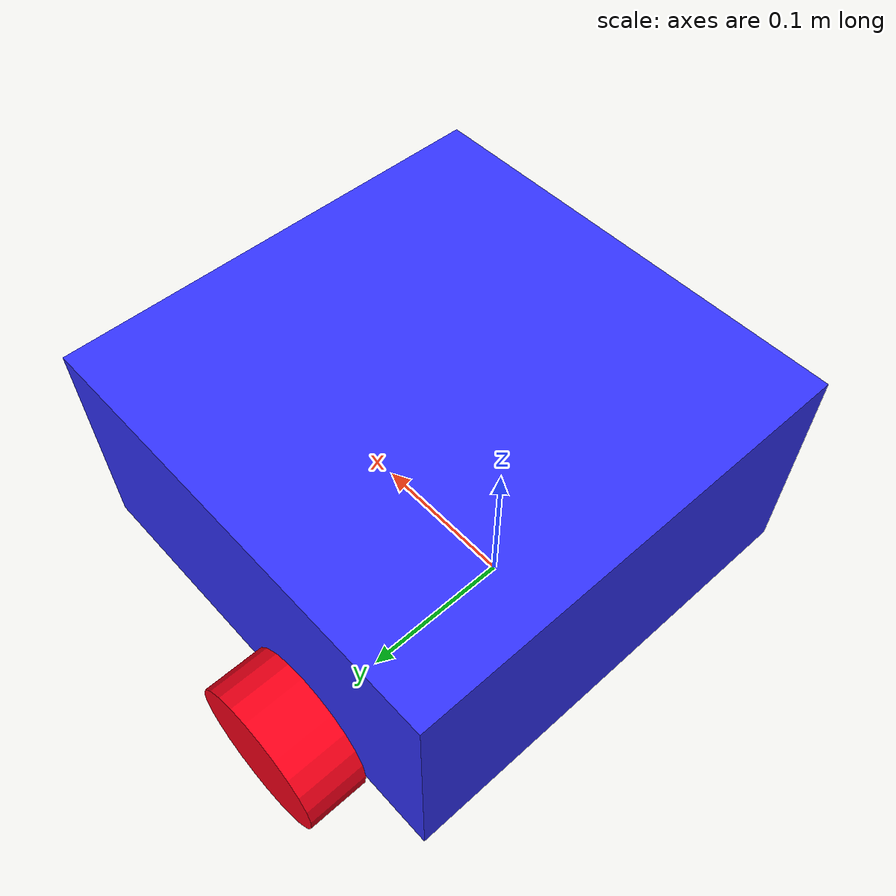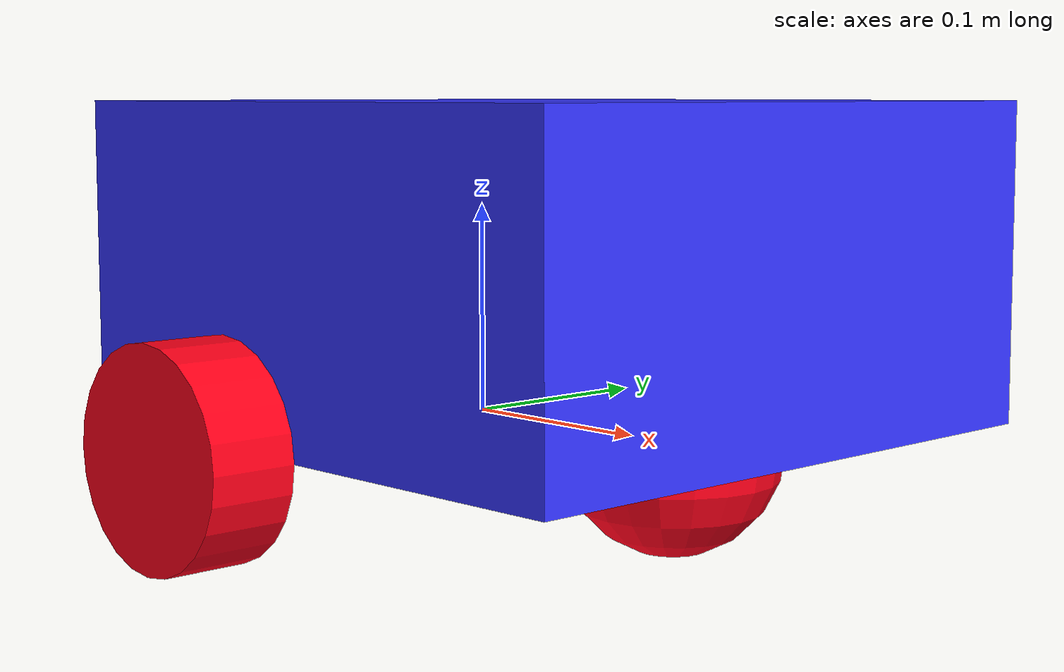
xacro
<?xml version="1.0"?>
<robot xmlns:xacro="http://www.ros.org/wiki/xacro" name="stupid_robot">

    <xacro:arg name="use_gazebo" default="false" />

    <xacro:include filename="stupid_robot_core.xacro" />

    <!-- Gazebo Plugins -->
    <xacro:if value="$(arg use_gazebo)">
        <xacro:include filename="gazebo_control.xacro" />
        <xacro:include filename="gazebo_lidar.xacro" />
        <xacro:include filename="gazebo_imu.xacro" />
    </xacro:if>
</robot>

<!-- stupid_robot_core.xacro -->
<robot xmlns:xacro="http://www.ros.org/wiki/xacro">

    <!-- INCLUDES -->
    <xacro:include filename="material.xacro"/>
    <xacro:include filename="inertial_macros.xacro"/>

    <!-- CHASSIS PROPERTIES -->
    <xacro:property name="chassis_width" value="0.3" />
    <xacro:property name="chassis_hight" value="0.15" />
    <xacro:property name="chassis_shift" value="0.1" />
    <xacro:property name="chassis_mass" value="0.5" />

    <!-- WHEEL PROPERTIES -->
    <xacro:property name="wheel_rad" value="0.05" />
    <xacro:property name="wheel_width" value="0.04"/>
    <xacro:property name="wheel_material" value="orange"/>
    <xacro:property name="wheel_mass" value="0.1"/>

    <!-- BASE LINK -->
    <link name="base_link">
    </link>

    <!-- CHASSIS LINK -->
    <link name="chassis_link">
        <visual>
            <geometry>
                <box size="${chassis_width} ${chassis_width} ${chassis_hight}"/>
            </geometry>
            <material name="blue"/>
            <origin xyz="${chassis_width/2} 0.0 ${chassis_hight/2}" rpy="0.0 0.0 0.0"/>
        </visual>
        <collision>
            <geometry>
                <box size="${chassis_width} ${chassis_width} ${chassis_hight}"/>
            </geometry>
            <origin xyz="${chassis_width/2} 0.0 ${chassis_hight/2}" rpy="0.0 0.0 0.0"/>
        </collision>
        <xacro:inertial_box mass="${chassis_mass}" x="${chassis_width}" y="${chassis_width}" z="${chassis_hight}">
            <origin xyz="${chassis_width/2} 0.0 ${chassis_hight/2}" rpy="0.0 0.0 0.0"/>
        </xacro:inertial_box>
    </link>

    <joint name="chassis_joint" type="fixed">
        <parent link="base_link"/>
        <child link="chassis_link"/>
        <origin xyz="${-chassis_shift} 0.0 0.0" rpy="0.0 0.0 0.0"/>
    </joint>

    <!-- LEFT WHEEL LINK -->
    <link name="left_wheel_link">
        <visual>
            <geometry>
                <cylinder radius="${wheel_rad}" length="${wheel_width}"/>
            </geometry>
            <origin xyz="0.0 ${wheel_width / 2} 0" rpy="${pi/2} 0.0 0.0"/>
            <material name="${wheel_material}"/>
        </visual>
        <collision>
            <geometry>
                <cylinder radius="${wheel_rad}" length="${wheel_width}"/>
            </geometry>
            <origin xyz="0.0 ${wheel_width / 2} 0" rpy="${pi/2} 0.0 0.0"/>
        </collision>
        <xacro:inertial_cylinder mass="${wheel_mass}" radius="${wheel_rad}" length="${wheel_width}">
            <origin xyz="0.0 ${wheel_width / 2} 0" rpy="${pi/2} 0.0 0.0"/>
        </xacro:inertial_cylinder>
    </link>

    <joint name="left_wheel_joint" type="continuous">
        <parent link="base_link"/>
        <child link="left_wheel_link"/>
        <origin xyz="0.0 ${chassis_width / 2} 0.0" rpy="0 0.0 0.0"/>
        <axis xyz="0.0 1.0 0.0"/>
    </joint>

    <!-- RIGHT WHEEL LINK -->
    <link name="right_wheel_link">
        <visual>
            <geometry>
                <cylinder radius="${wheel_rad}" length="${wheel_width}"/>
            </geometry>
            <origin xyz="0.0 ${-wheel_width / 2} 0" rpy="${pi/2} 0.0 0.0"/>
            <material name="${wheel_material}"/>
        </visual>
        <collision>
            <geometry>
                <cylinder radius="${wheel_rad}" length="${wheel_width}"/>
            </geometry>
            <origin xyz="0.0 ${-wheel_width / 2} 0" rpy="${pi/2} 0.0 0.0"/>
        </collision>
        <xacro:inertial_cylinder mass="${wheel_mass}" radius="${wheel_rad}" length="${wheel_width}">
            <origin xyz="0.0 ${-wheel_width / 2} 0" rpy="${pi/2} 0.0 0.0"/>
        </xacro:inertial_cylinder>
    </link>

    <joint name="right_wheel_joint" type="continuous">
        <parent link="base_link"/>
        <child link="right_wheel_link"/>
        <origin xyz="0.0 ${-chassis_width / 2} 0.0" rpy="0 0.0 0.0"/>
        <axis xyz="0.0 1.0 0.0"/>
    </joint>

    <!-- CASTER WHEEL LINK -->
    <link name="caster_wheel_link">
        <visual>
            <geometry>
                <sphere radius="${wheel_rad}"/>
            </geometry>
            <material name="${wheel_material}"/>
        </visual>
        <collision>
            <geometry>
                <sphere radius="${wheel_rad}"/>
            </geometry>
        </collision>
        <xacro:inertial_sphere mass="${wheel_mass}" radius="${wheel_rad}">
            <origin xyz="0.0 0.0 0.0" rpy="0.0 0.0 0.0"/>
        </xacro:inertial_sphere>
    </link>

    <joint name="caster_wheel_joint" type="fixed">
        <parent link="chassis_link"/>
        <child link="caster_wheel_link"/>
        <origin xyz="${chassis_width * 3 / 4} 0.0 0.0" rpy="0.0 0.0 0.0"/>
    </joint>

    <gazebo reference="caster_wheel_link">
        <mu1 value="0.001"/>
        <mu2 value="0.001"/>
    </gazebo>

</robot>

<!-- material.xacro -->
<robot xmlns:xacro="http://www.ros.org/wiki/xacro">

    <material name="white">
        <color rgba="1 1 1 1"/>
    </material>

    <material name="orange">
        <color rgba="1 0. 0.1 1"/>
    </material>

    <material name="blue">
        <color rgba="0.2 0.2 1 1"/>
    </material>

    <material name="black">
        <color rgba="0 0 0 1"/>
    </material>
</robot>

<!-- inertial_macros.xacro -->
<robot xmlns:xacro="http://www.ros.org/wiki/xacro" >

    <!-- Specify some standard inertial calculations https://en.wikipedia.org/wiki/List_of_moments_of_inertia -->
    <!-- These make use of xacro's mathematical functionality -->

    <xacro:macro name="inertial_sphere" params="mass radius *origin">
        <inertial>
            <xacro:insert_block name="origin"/>
            <mass value="${mass}" />
            <inertia ixx="${(2.0/5.0) * mass * (radius*radius)}" ixy="0.0" ixz="0.0"
                    iyy="${(2.0/5.0) * mass * (radius*radius)}" iyz="0.0"
                    izz="${(2.0/5.0) * mass * (radius*radius)}" />
        </inertial>
    </xacro:macro>

    <xacro:macro name="inertial_box" params="mass x y z *origin">
        <inertial>
            <xacro:insert_block name="origin"/>
            <mass value="${mass}" />
            <inertia ixx="${(1.0/12.0) * mass * (y*y+z*z)}" ixy="0.0" ixz="0.0"
                    iyy="${(1.0/12.0) * mass * (x*x+z*z)}" iyz="0.0"
                    izz="${(1.0/12.0) * mass * (x*x+y*y)}" />
        </inertial>
    </xacro:macro>

<xacro:macro name="inertial_cylinder" params="mass length radius *origin">
    <inertial>
        <xacro:insert_block name="origin"/>
        <mass value="${mass}" />
        <inertia ixx="${(1.0/12.0) * mass * (3.0 * radius * radius + length * length)}"
                ixy="0.0" ixz="0.0"
                iyy="${(1.0/12.0) * (mass) * (3.0 * (radius) * (radius) + (length) * (length))}"
                iyz="0.0"
                izz="${(1.0/2.0) * (mass) * (radius) * (radius)}" />
    </inertial>
</xacro:macro>

</robot>
